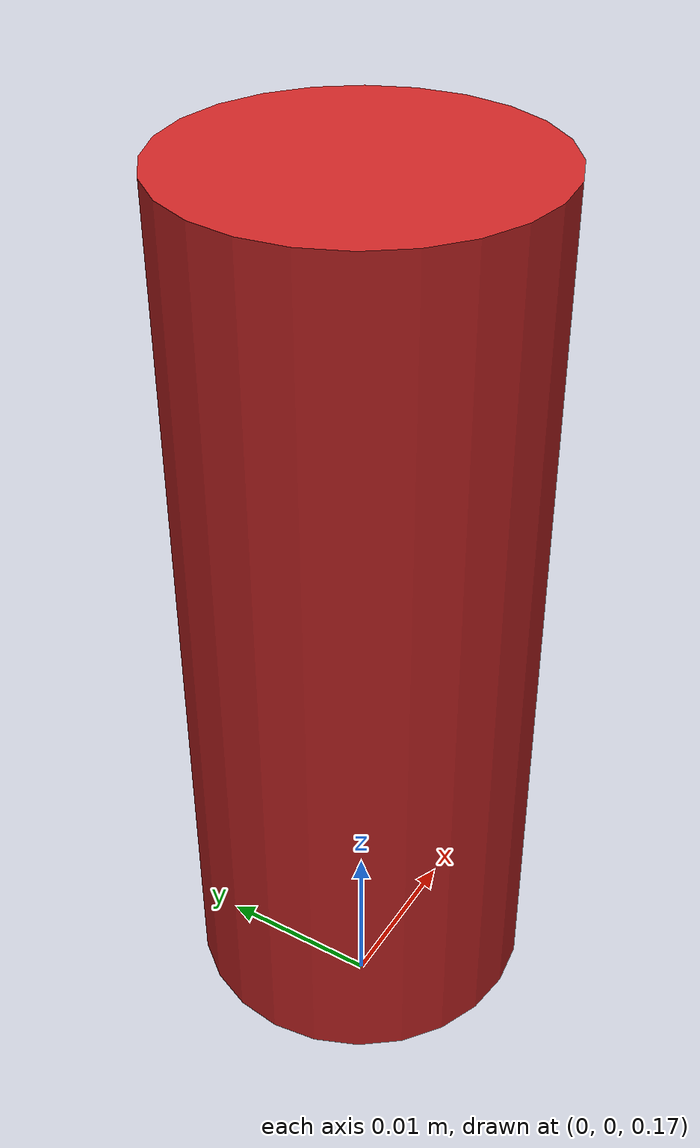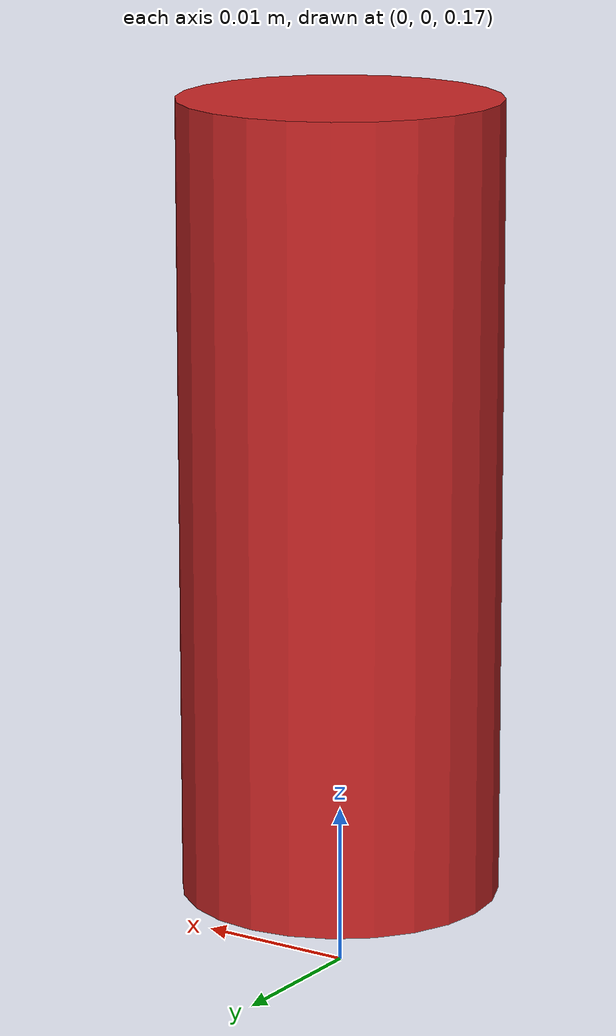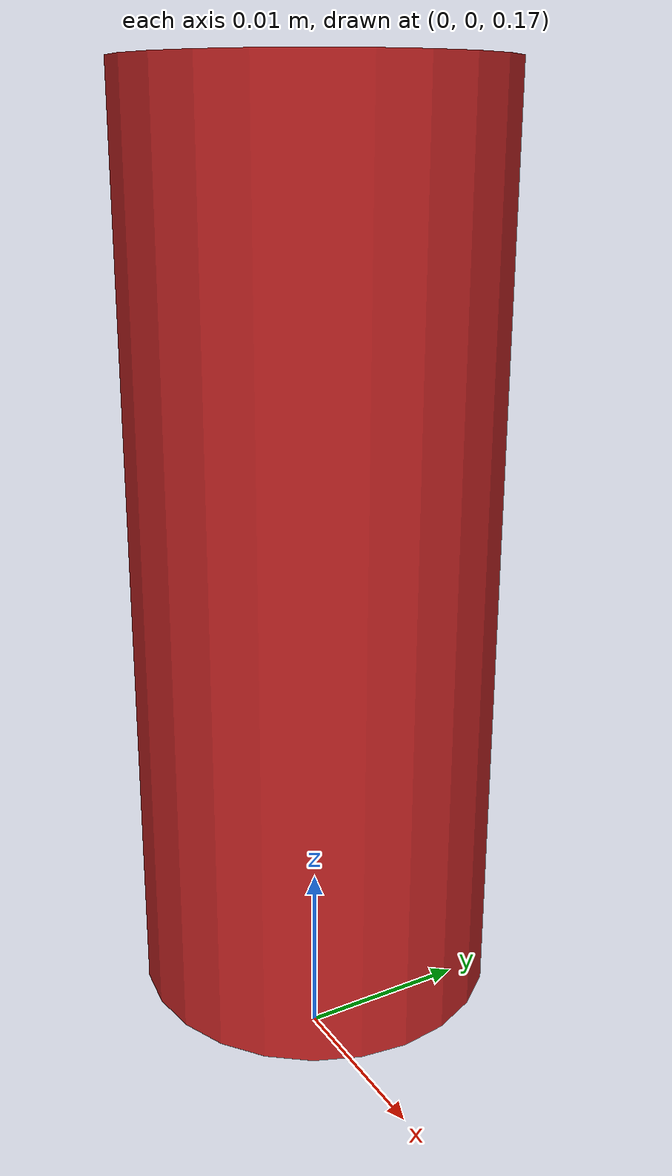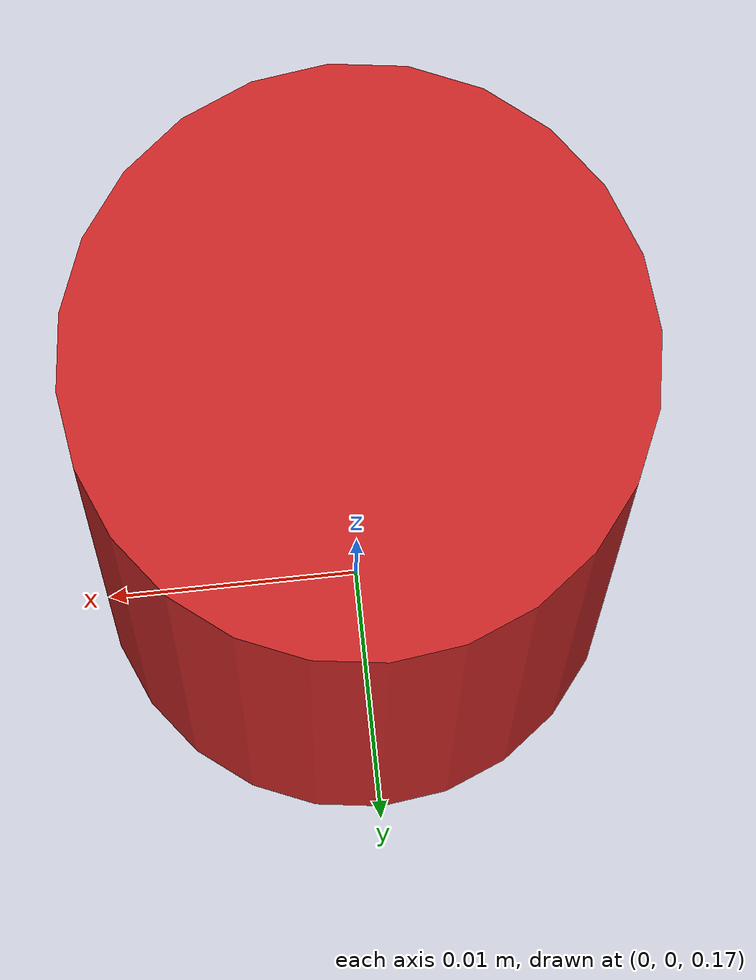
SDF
<?xml version="1.0" ?>
<sdf version="1.4">
  <model name="object_cylinder">
    <static>false</static>
    <link name="link">
      <inertial>
        <pose>0 0 0.2 0 0 0</pose>
        <mass>0.1</mass>
        <inertia>
          <ixx>2.33333333e-5</ixx>
          <ixy>0</ixy>
          <ixz>0</ixz>
          <iyy>2.33333333e-5</iyy>
          <iyz>0</iyz>
          <izz>5e-6</izz>
        </inertia>
      </inertial>

      <collision name="collision">
        <pose>0 0 0.2 0 0 0</pose>
        <geometry>
          <cylinder>
            <length>0.05</length>
            <radius>0.02</radius>
          </cylinder>
        </geometry>
        <surface>
          <friction>
            <ode>
              <mu>1.0</mu>
              <mu2>1.0</mu2>
            </ode>
          </friction>
          <contact>
            <ode>
              <kp>10000000.0</kp>
              <kd>1.0</kd>
              <min_depth>0.001</min_depth>
              <max_vel>0.01</max_vel>
            </ode>
          </contact>
        </surface>
      </collision>

      <visual name="visual1">
        <pose>0 0 0.2 0 0 0</pose>
        <geometry>
          <cylinder>
            <length>0.05</length>
            <radius>0.01</radius>
          </cylinder>
        </geometry>
        <material>
          <script>
            <uri>file://media/materials/scripts/gazebo.material</uri>
            <name>Gazebo/Red</name>
          </script>
        </material>
      </visual>
    </link>
  </model>
</sdf>
